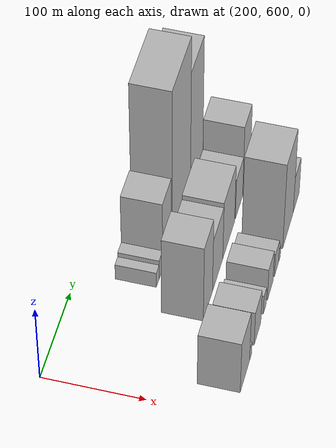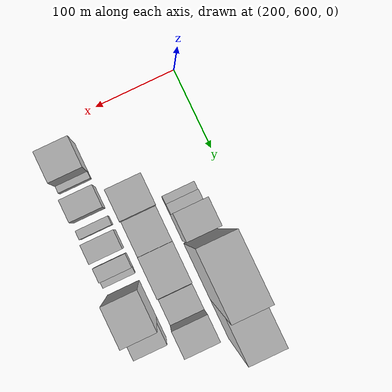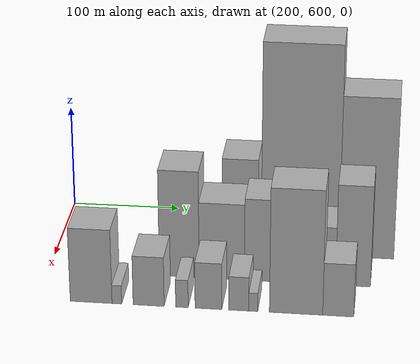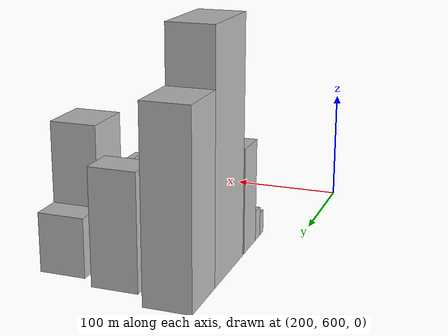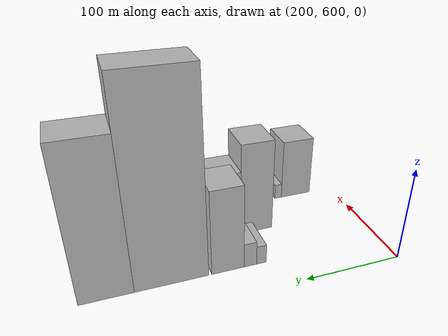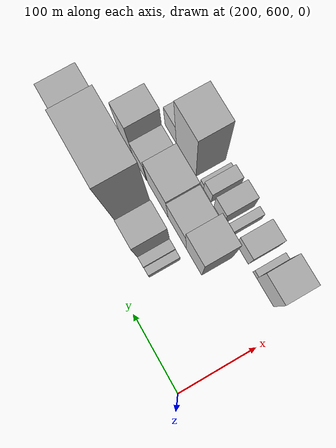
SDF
<sdf version="1.6">
 <world name="default">
  <model name="building_196">
   <static>1</static>
   <pose>256.0000 731.9410 0 0.000000 0.000000 0.000000</pose>
   <link name="link">
    <pose>0 0 10.50 0 0 0</pose>
    <collision name="collision"><geometry><box><size>40.0000 10.1059 21.0000</size></box></geometry></collision>
    <visual name="visual">
     <cast_shadows>0</cast_shadows>
     <geometry><box><size>40.0000 10.1059 21.0000</size></box></geometry>
     <material>
      <script>
       <uri>model://HANNAS_wall/materials/scripts</uri>
       <uri>model://HANNAS_wall/materials/textures</uri>
       <name>vrc/HANNAS_wall</name>
      </script>
     </material>
    </visual>
   </link>
  </model>
  <model name="building_197">
   <static>1</static>
   <pose>256.0000 743.4361 0 0.000000 0.000000 0.000000</pose>
   <link name="link">
    <pose>0 0 13.50 0 0 0</pose>
    <collision name="collision"><geometry><box><size>40.0000 12.8843 27.0000</size></box></geometry></collision>
    <visual name="visual">
     <cast_shadows>0</cast_shadows>
     <geometry><box><size>40.0000 12.8843 27.0000</size></box></geometry>
     <material>
      <script>
       <uri>model://HANNAS_wall/materials/scripts</uri>
       <uri>model://HANNAS_wall/materials/textures</uri>
       <name>vrc/HANNAS_wall</name>
      </script>
     </material>
    </visual>
   </link>
  </model>
  <model name="building_198">
   <static>1</static>
   <pose>256.0000 766.2232 0 0.000000 0.000000 0.000000</pose>
   <link name="link">
    <pose>0 0 46.50 0 0 0</pose>
    <collision name="collision"><geometry><box><size>40.0000 32.6898 93.0000</size></box></geometry></collision>
    <visual name="visual">
     <cast_shadows>0</cast_shadows>
     <geometry><box><size>40.0000 32.6898 93.0000</size></box></geometry>
     <material>
      <script>
       <uri>model://HANNAS_wall/materials/scripts</uri>
       <uri>model://HANNAS_wall/materials/textures</uri>
       <name>vrc/HANNAS_wall</name>
      </script>
     </material>
    </visual>
   </link>
  </model>
  <model name="building_199">
   <static>1</static>
   <pose>256.0000 820.8286 0 0.000000 0.000000 0.000000</pose>
   <link name="link">
    <pose>0 0 103.50 0 0 0</pose>
    <collision name="collision"><geometry><box><size>40.0000 70.5211 207.0000</size></box></geometry></collision>
    <visual name="visual">
     <cast_shadows>0</cast_shadows>
     <geometry><box><size>40.0000 70.5211 207.0000</size></box></geometry>
     <material>
      <script>
       <uri>model://HANNAS_wall/materials/scripts</uri>
       <uri>model://HANNAS_wall/materials/textures</uri>
       <name>vrc/HANNAS_wall</name>
      </script>
     </material>
    </visual>
   </link>
  </model>
  <model name="building_200">
   <static>1</static>
   <pose>256.0000 880.9322 0 0.000000 0.000000 0.000000</pose>
   <link name="link">
    <pose>0 0 79.50 0 0 0</pose>
    <collision name="collision"><geometry><box><size>40.0000 49.6860 159.0000</size></box></geometry></collision>
    <visual name="visual">
     <cast_shadows>0</cast_shadows>
     <geometry><box><size>40.0000 49.6860 159.0000</size></box></geometry>
     <material>
      <script>
       <uri>model://HANNAS_wall/materials/scripts</uri>
       <uri>model://HANNAS_wall/materials/textures</uri>
       <name>vrc/HANNAS_wall</name>
      </script>
     </material>
    </visual>
   </link>
  </model>
  <model name="building_245">
   <static>1</static>
   <pose>308.0000 717.1188 0 0.000000 0.000000 0.000000</pose>
   <link name="link">
    <pose>0 0 52.50 0 0 0</pose>
    <collision name="collision"><geometry><box><size>40.0000 35.4001 105.0000</size></box></geometry></collision>
    <visual name="visual">
     <cast_shadows>0</cast_shadows>
     <geometry><box><size>40.0000 35.4001 105.0000</size></box></geometry>
     <material>
      <script>
       <uri>model://HANNAS_wall/materials/scripts</uri>
       <uri>model://HANNAS_wall/materials/textures</uri>
       <name>vrc/HANNAS_wall</name>
      </script>
     </material>
    </visual>
   </link>
  </model>
  <model name="building_246">
   <static>1</static>
   <pose>308.0000 755.1463 0 0.000000 0.000000 0.000000</pose>
   <link name="link">
    <pose>0 0 37.50 0 0 0</pose>
    <collision name="collision"><geometry><box><size>40.0000 40.6551 75.0000</size></box></geometry></collision>
    <visual name="visual">
     <cast_shadows>0</cast_shadows>
     <geometry><box><size>40.0000 40.6551 75.0000</size></box></geometry>
     <material>
      <script>
       <uri>model://HANNAS_wall/materials/scripts</uri>
       <uri>model://HANNAS_wall/materials/textures</uri>
       <name>vrc/HANNAS_wall</name>
      </script>
     </material>
    </visual>
   </link>
  </model>
  <model name="building_247">
   <static>1</static>
   <pose>308.0000 799.2355 0 0.000000 0.000000 0.000000</pose>
   <link name="link">
    <pose>0 0 40.50 0 0 0</pose>
    <collision name="collision"><geometry><box><size>40.0000 47.5233 81.0000</size></box></geometry></collision>
    <visual name="visual">
     <cast_shadows>0</cast_shadows>
     <geometry><box><size>40.0000 47.5233 81.0000</size></box></geometry>
     <material>
      <script>
       <uri>model://HANNAS_wall/materials/scripts</uri>
       <uri>model://HANNAS_wall/materials/textures</uri>
       <name>vrc/HANNAS_wall</name>
      </script>
     </material>
    </visual>
   </link>
  </model>
  <model name="building_248">
   <static>1</static>
   <pose>308.0000 840.9904 0 0.000000 0.000000 0.000000</pose>
   <link name="link">
    <pose>0 0 28.50 0 0 0</pose>
    <collision name="collision"><geometry><box><size>40.0000 29.9863 57.0000</size></box></geometry></collision>
    <visual name="visual">
     <cast_shadows>0</cast_shadows>
     <geometry><box><size>40.0000 29.9863 57.0000</size></box></geometry>
     <material>
      <script>
       <uri>model://HANNAS_wall/materials/scripts</uri>
       <uri>model://HANNAS_wall/materials/textures</uri>
       <name>vrc/HANNAS_wall</name>
      </script>
     </material>
    </visual>
   </link>
  </model>
  <model name="building_249">
   <static>1</static>
   <pose>308.0000 871.2927 0 0.000000 0.000000 0.000000</pose>
   <link name="link">
    <pose>0 0 49.50 0 0 0</pose>
    <collision name="collision"><geometry><box><size>40.0000 30.6183 99.0000</size></box></geometry></collision>
    <visual name="visual">
     <cast_shadows>0</cast_shadows>
     <geometry><box><size>40.0000 30.6183 99.0000</size></box></geometry>
     <material>
      <script>
       <uri>model://HANNAS_wall/materials/scripts</uri>
       <uri>model://HANNAS_wall/materials/textures</uri>
       <name>vrc/HANNAS_wall</name>
      </script>
     </material>
    </visual>
   </link>
  </model>
  <model name="building_291">
   <static>1</static>
   <pose>360.0000 647.0767 0 0.000000 0.000000 0.000000</pose>
   <link name="link">
    <pose>0 0 36.00 0 0 0</pose>
    <collision name="collision"><geometry><box><size>40.0000 36.6161 72.0000</size></box></geometry></collision>
    <visual name="visual">
     <cast_shadows>0</cast_shadows>
     <geometry><box><size>40.0000 36.6161 72.0000</size></box></geometry>
     <material>
      <script>
       <uri>model://HANNAS_wall/materials/scripts</uri>
       <uri>model://HANNAS_wall/materials/textures</uri>
       <name>vrc/HANNAS_wall</name>
      </script>
     </material>
    </visual>
   </link>
  </model>
  <model name="building_292">
   <static>1</static>
   <pose>360.0000 669.5942 0 0.000000 0.000000 0.000000</pose>
   <link name="link">
    <pose>0 0 9.00 0 0 0</pose>
    <collision name="collision"><geometry><box><size>40.0000 8.4188 18.0000</size></box></geometry></collision>
    <visual name="visual">
     <cast_shadows>0</cast_shadows>
     <geometry><box><size>40.0000 8.4188 18.0000</size></box></geometry>
     <material>
      <script>
       <uri>model://HANNAS_wall/materials/scripts</uri>
       <uri>model://HANNAS_wall/materials/textures</uri>
       <name>vrc/HANNAS_wall</name>
      </script>
     </material>
    </visual>
   </link>
  </model>
  <model name="building_293">
   <static>1</static>
   <pose>360.0000 697.3313 0 0.000000 0.000000 0.000000</pose>
   <link name="link">
    <pose>0 0 24.00 0 0 0</pose>
    <collision name="collision"><geometry><box><size>40.0000 27.0555 48.0000</size></box></geometry></collision>
    <visual name="visual">
     <cast_shadows>0</cast_shadows>
     <geometry><box><size>40.0000 27.0555 48.0000</size></box></geometry>
     <material>
      <script>
       <uri>model://HANNAS_wall/materials/scripts</uri>
       <uri>model://HANNAS_wall/materials/textures</uri>
       <name>vrc/HANNAS_wall</name>
      </script>
     </material>
    </visual>
   </link>
  </model>
  <model name="building_294">
   <static>1</static>
   <pose>360.0000 726.2751 0 0.000000 0.000000 0.000000</pose>
   <link name="link">
    <pose>0 0 13.50 0 0 0</pose>
    <collision name="collision"><geometry><box><size>40.0000 10.8320 27.0000</size></box></geometry></collision>
    <visual name="visual">
     <cast_shadows>0</cast_shadows>
     <geometry><box><size>40.0000 10.8320 27.0000</size></box></geometry>
     <material>
      <script>
       <uri>model://HANNAS_wall/materials/scripts</uri>
       <uri>model://HANNAS_wall/materials/textures</uri>
       <name>vrc/HANNAS_wall</name>
      </script>
     </material>
    </visual>
   </link>
  </model>
  <model name="building_295">
   <static>1</static>
   <pose>360.0000 749.3023 0 0.000000 0.000000 0.000000</pose>
   <link name="link">
    <pose>0 0 22.50 0 0 0</pose>
    <collision name="collision"><geometry><box><size>40.0000 23.2226 45.0000</size></box></geometry></collision>
    <visual name="visual">
     <cast_shadows>0</cast_shadows>
     <geometry><box><size>40.0000 23.2226 45.0000</size></box></geometry>
     <material>
      <script>
       <uri>model://HANNAS_wall/materials/scripts</uri>
       <uri>model://HANNAS_wall/materials/textures</uri>
       <name>vrc/HANNAS_wall</name>
      </script>
     </material>
    </visual>
   </link>
  </model>
  <model name="building_296">
   <static>1</static>
   <pose>360.0000 775.5511 0 0.000000 0.000000 0.000000</pose>
   <link name="link">
    <pose>0 0 16.50 0 0 0</pose>
    <collision name="collision"><geometry><box><size>40.0000 17.2750 33.0000</size></box></geometry></collision>
    <visual name="visual">
     <cast_shadows>0</cast_shadows>
     <geometry><box><size>40.0000 17.2750 33.0000</size></box></geometry>
     <material>
      <script>
       <uri>model://HANNAS_wall/materials/scripts</uri>
       <uri>model://HANNAS_wall/materials/textures</uri>
       <name>vrc/HANNAS_wall</name>
      </script>
     </material>
    </visual>
   </link>
  </model>
  <model name="building_297">
   <static>1</static>
   <pose>360.0000 788.0808 0 0.000000 0.000000 0.000000</pose>
   <link name="link">
    <pose>0 0 9.00 0 0 0</pose>
    <collision name="collision"><geometry><box><size>40.0000 7.7844 18.0000</size></box></geometry></collision>
    <visual name="visual">
     <cast_shadows>0</cast_shadows>
     <geometry><box><size>40.0000 7.7844 18.0000</size></box></geometry>
     <material>
      <script>
       <uri>model://HANNAS_wall/materials/scripts</uri>
       <uri>model://HANNAS_wall/materials/textures</uri>
       <name>vrc/HANNAS_wall</name>
      </script>
     </material>
    </visual>
   </link>
  </model>
  <model name="building_298">
   <static>1</static>
   <pose>360.0000 824.8594 0 0.000000 0.000000 0.000000</pose>
   <link name="link">
    <pose>0 0 60.00 0 0 0</pose>
    <collision name="collision"><geometry><box><size>40.0000 45.7726 120.0000</size></box></geometry></collision>
    <visual name="visual">
     <cast_shadows>0</cast_shadows>
     <geometry><box><size>40.0000 45.7726 120.0000</size></box></geometry>
     <material>
      <script>
       <uri>model://HANNAS_wall/materials/scripts</uri>
       <uri>model://HANNAS_wall/materials/textures</uri>
       <name>vrc/HANNAS_wall</name>
      </script>
     </material>
    </visual>
   </link>
  </model>
  <model name="building_299">
   <static>1</static>
   <pose>360.0000 861.0049 0 0.000000 0.000000 0.000000</pose>
   <link name="link">
    <pose>0 0 25.50 0 0 0</pose>
    <collision name="collision"><geometry><box><size>40.0000 26.5186 51.0000</size></box></geometry></collision>
    <visual name="visual">
     <cast_shadows>0</cast_shadows>
     <geometry><box><size>40.0000 26.5186 51.0000</size></box></geometry>
     <material>
      <script>
       <uri>model://HANNAS_wall/materials/scripts</uri>
       <uri>model://HANNAS_wall/materials/textures</uri>
       <name>vrc/HANNAS_wall</name>
      </script>
     </material>
    </visual>
   </link>
  </model>
 </world>
</sdf>
